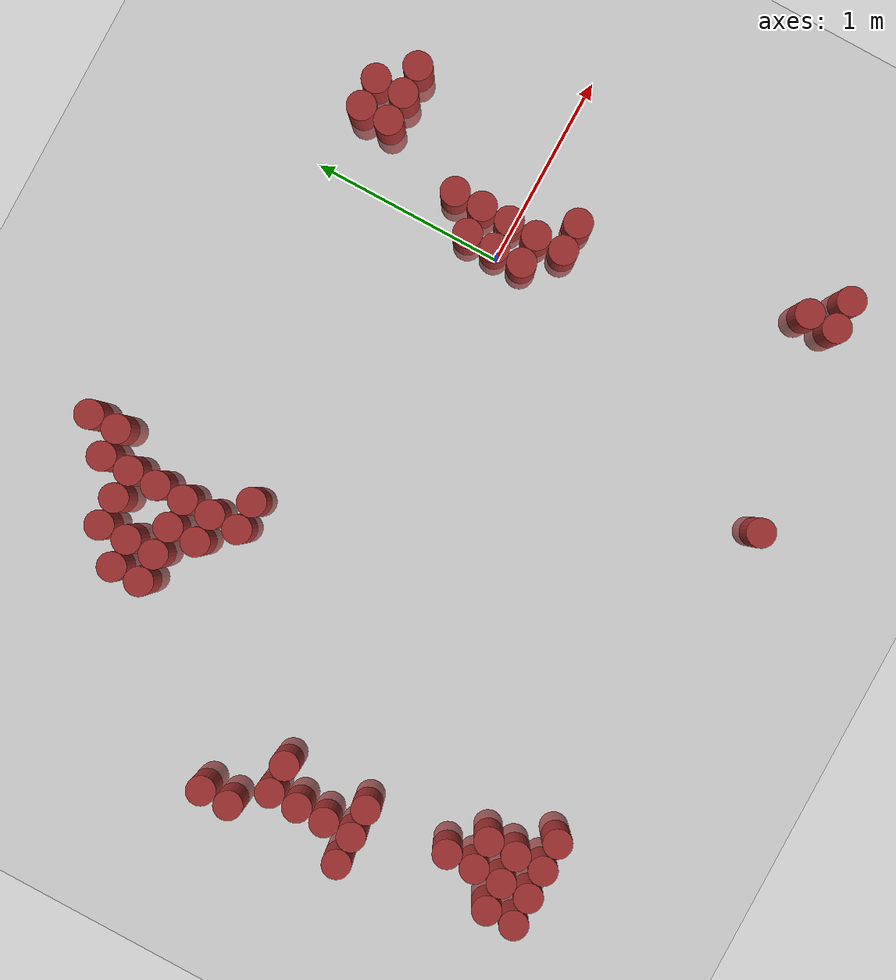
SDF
<sdf version="1.6">
 <world name="default">
  <model name="ground_plane">
   <static>1</static>
   <link name="link">
    <collision name="collision">
     <geometry><plane><normal>0 0 1</normal><size>100 100</size></plane></geometry>
     <surface><friction><ode><mu>100</mu><mu2>50</mu2></ode></friction></surface>
    </collision>
    <visual name="visual">
     <cast_shadows>0</cast_shadows>
     <geometry><plane><normal>0 0 1</normal><size>100 100</size></plane></geometry>
     <material>
      <script><uri>file://media/materials/scripts/gazebo.material</uri><name>Gazebo/Grey</name></script>
     </material>
    </visual>
   </link>
  </model>
  <model name="unit_cylinder_289">
   <static>1</static>
   <pose>-2.975000 -0.725000 0.000000 0.000000 0.000000 0.000000</pose>
   <link name="link">
    <inertial>
     <mass>1</mass>
     <inertia><ixx>0.145833</ixx><ixy>0</ixy><ixz>0</ixz><iyy>0.145833</iyy><iyz>0</iyz><izz>0.125</izz></inertia>
    </inertial>
    <collision name="collision">
     <geometry><cylinder><radius>0.075000</radius><length>1.5</length></cylinder></geometry>
    </collision>
    <visual name="visual">
     <geometry><cylinder><radius>0.075000</radius><length>1.5</length></cylinder></geometry>
     <material>
      <ambient>0.648000 0.192000 0.192000 1</ambient>
      <diffuse>0.648000 0.192000 0.192000 1</diffuse>
     </material>
     <material>
      <script><name>Gazebo/Grey</name><uri>file://media/materials/scripts/gazebo.material</uri></script>
     </material>
    </visual>
   </link>
  </model>
  <model name="unit_cylinder_290">
   <static>1</static>
   <pose>-2.975000 -0.125000 0.000000 0.000000 0.000000 0.000000</pose>
   <link name="link">
    <inertial>
     <mass>1</mass>
     <inertia><ixx>0.145833</ixx><ixy>0</ixy><ixz>0</ixz><iyy>0.145833</iyy><iyz>0</iyz><izz>0.125</izz></inertia>
    </inertial>
    <collision name="collision">
     <geometry><cylinder><radius>0.075000</radius><length>1.5</length></cylinder></geometry>
    </collision>
    <visual name="visual">
     <geometry><cylinder><radius>0.075000</radius><length>1.5</length></cylinder></geometry>
     <material>
      <ambient>0.648000 0.192000 0.192000 1</ambient>
      <diffuse>0.648000 0.192000 0.192000 1</diffuse>
     </material>
     <material>
      <script><name>Gazebo/Grey</name><uri>file://media/materials/scripts/gazebo.material</uri></script>
     </material>
    </visual>
   </link>
  </model>
  <model name="unit_cylinder_291">
   <static>1</static>
   <pose>-2.975000 0.025000 0.000000 0.000000 0.000000 0.000000</pose>
   <link name="link">
    <inertial>
     <mass>1</mass>
     <inertia><ixx>0.145833</ixx><ixy>0</ixy><ixz>0</ixz><iyy>0.145833</iyy><iyz>0</iyz><izz>0.125</izz></inertia>
    </inertial>
    <collision name="collision">
     <geometry><cylinder><radius>0.075000</radius><length>1.5</length></cylinder></geometry>
    </collision>
    <visual name="visual">
     <geometry><cylinder><radius>0.075000</radius><length>1.5</length></cylinder></geometry>
     <material>
      <ambient>0.648000 0.192000 0.192000 1</ambient>
      <diffuse>0.648000 0.192000 0.192000 1</diffuse>
     </material>
     <material>
      <script><name>Gazebo/Grey</name><uri>file://media/materials/scripts/gazebo.material</uri></script>
     </material>
    </visual>
   </link>
  </model>
  <model name="unit_cylinder_295">
   <static>1</static>
   <pose>-2.825000 -1.625000 0.000000 0.000000 0.000000 0.000000</pose>
   <link name="link">
    <inertial>
     <mass>1</mass>
     <inertia><ixx>0.145833</ixx><ixy>0</ixy><ixz>0</ixz><iyy>0.145833</iyy><iyz>0</iyz><izz>0.125</izz></inertia>
    </inertial>
    <collision name="collision">
     <geometry><cylinder><radius>0.075000</radius><length>1.5</length></cylinder></geometry>
    </collision>
    <visual name="visual">
     <geometry><cylinder><radius>0.075000</radius><length>1.5</length></cylinder></geometry>
     <material>
      <ambient>0.648000 0.192000 0.192000 1</ambient>
      <diffuse>0.648000 0.192000 0.192000 1</diffuse>
     </material>
     <material>
      <script><name>Gazebo/Grey</name><uri>file://media/materials/scripts/gazebo.material</uri></script>
     </material>
    </visual>
   </link>
  </model>
  <model name="unit_cylinder_296">
   <static>1</static>
   <pose>-2.825000 -1.475000 0.000000 0.000000 0.000000 0.000000</pose>
   <link name="link">
    <inertial>
     <mass>1</mass>
     <inertia><ixx>0.145833</ixx><ixy>0</ixy><ixz>0</ixz><iyy>0.145833</iyy><iyz>0</iyz><izz>0.125</izz></inertia>
    </inertial>
    <collision name="collision">
     <geometry><cylinder><radius>0.075000</radius><length>1.5</length></cylinder></geometry>
    </collision>
    <visual name="visual">
     <geometry><cylinder><radius>0.075000</radius><length>1.5</length></cylinder></geometry>
     <material>
      <ambient>0.648000 0.192000 0.192000 1</ambient>
      <diffuse>0.648000 0.192000 0.192000 1</diffuse>
     </material>
     <material>
      <script><name>Gazebo/Grey</name><uri>file://media/materials/scripts/gazebo.material</uri></script>
     </material>
    </visual>
   </link>
  </model>
  <model name="unit_cylinder_297">
   <static>1</static>
   <pose>-2.825000 -0.725000 0.000000 0.000000 0.000000 0.000000</pose>
   <link name="link">
    <inertial>
     <mass>1</mass>
     <inertia><ixx>0.145833</ixx><ixy>0</ixy><ixz>0</ixz><iyy>0.145833</iyy><iyz>0</iyz><izz>0.125</izz></inertia>
    </inertial>
    <collision name="collision">
     <geometry><cylinder><radius>0.075000</radius><length>1.5</length></cylinder></geometry>
    </collision>
    <visual name="visual">
     <geometry><cylinder><radius>0.075000</radius><length>1.5</length></cylinder></geometry>
     <material>
      <ambient>0.648000 0.192000 0.192000 1</ambient>
      <diffuse>0.648000 0.192000 0.192000 1</diffuse>
     </material>
     <material>
      <script><name>Gazebo/Grey</name><uri>file://media/materials/scripts/gazebo.material</uri></script>
     </material>
    </visual>
   </link>
  </model>
  <model name="unit_cylinder_298">
   <static>1</static>
   <pose>-2.825000 -0.575000 0.000000 0.000000 0.000000 0.000000</pose>
   <link name="link">
    <inertial>
     <mass>1</mass>
     <inertia><ixx>0.145833</ixx><ixy>0</ixy><ixz>0</ixz><iyy>0.145833</iyy><iyz>0</iyz><izz>0.125</izz></inertia>
    </inertial>
    <collision name="collision">
     <geometry><cylinder><radius>0.075000</radius><length>1.5</length></cylinder></geometry>
    </collision>
    <visual name="visual">
     <geometry><cylinder><radius>0.075000</radius><length>1.5</length></cylinder></geometry>
     <material>
      <ambient>0.648000 0.192000 0.192000 1</ambient>
      <diffuse>0.648000 0.192000 0.192000 1</diffuse>
     </material>
     <material>
      <script><name>Gazebo/Grey</name><uri>file://media/materials/scripts/gazebo.material</uri></script>
     </material>
    </visual>
   </link>
  </model>
  <model name="unit_cylinder_299">
   <static>1</static>
   <pose>-2.825000 -0.425000 0.000000 0.000000 0.000000 0.000000</pose>
   <link name="link">
    <inertial>
     <mass>1</mass>
     <inertia><ixx>0.145833</ixx><ixy>0</ixy><ixz>0</ixz><iyy>0.145833</iyy><iyz>0</iyz><izz>0.125</izz></inertia>
    </inertial>
    <collision name="collision">
     <geometry><cylinder><radius>0.075000</radius><length>1.5</length></cylinder></geometry>
    </collision>
    <visual name="visual">
     <geometry><cylinder><radius>0.075000</radius><length>1.5</length></cylinder></geometry>
     <material>
      <ambient>0.648000 0.192000 0.192000 1</ambient>
      <diffuse>0.648000 0.192000 0.192000 1</diffuse>
     </material>
     <material>
      <script><name>Gazebo/Grey</name><uri>file://media/materials/scripts/gazebo.material</uri></script>
     </material>
    </visual>
   </link>
  </model>
  <model name="unit_cylinder_300">
   <static>1</static>
   <pose>-2.825000 -0.275000 0.000000 0.000000 0.000000 0.000000</pose>
   <link name="link">
    <inertial>
     <mass>1</mass>
     <inertia><ixx>0.145833</ixx><ixy>0</ixy><ixz>0</ixz><iyy>0.145833</iyy><iyz>0</iyz><izz>0.125</izz></inertia>
    </inertial>
    <collision name="collision">
     <geometry><cylinder><radius>0.075000</radius><length>1.5</length></cylinder></geometry>
    </collision>
    <visual name="visual">
     <geometry><cylinder><radius>0.075000</radius><length>1.5</length></cylinder></geometry>
     <material>
      <ambient>0.648000 0.192000 0.192000 1</ambient>
      <diffuse>0.648000 0.192000 0.192000 1</diffuse>
     </material>
     <material>
      <script><name>Gazebo/Grey</name><uri>file://media/materials/scripts/gazebo.material</uri></script>
     </material>
    </visual>
   </link>
  </model>
  <model name="unit_cylinder_307">
   <static>1</static>
   <pose>-2.675000 -1.625000 0.000000 0.000000 0.000000 0.000000</pose>
   <link name="link">
    <inertial>
     <mass>1</mass>
     <inertia><ixx>0.145833</ixx><ixy>0</ixy><ixz>0</ixz><iyy>0.145833</iyy><iyz>0</iyz><izz>0.125</izz></inertia>
    </inertial>
    <collision name="collision">
     <geometry><cylinder><radius>0.075000</radius><length>1.5</length></cylinder></geometry>
    </collision>
    <visual name="visual">
     <geometry><cylinder><radius>0.075000</radius><length>1.5</length></cylinder></geometry>
     <material>
      <ambient>0.648000 0.192000 0.192000 1</ambient>
      <diffuse>0.648000 0.192000 0.192000 1</diffuse>
     </material>
     <material>
      <script><name>Gazebo/Grey</name><uri>file://media/materials/scripts/gazebo.material</uri></script>
     </material>
    </visual>
   </link>
  </model>
  <model name="unit_cylinder_308">
   <static>1</static>
   <pose>-2.675000 -1.475000 0.000000 0.000000 0.000000 0.000000</pose>
   <link name="link">
    <inertial>
     <mass>1</mass>
     <inertia><ixx>0.145833</ixx><ixy>0</ixy><ixz>0</ixz><iyy>0.145833</iyy><iyz>0</iyz><izz>0.125</izz></inertia>
    </inertial>
    <collision name="collision">
     <geometry><cylinder><radius>0.075000</radius><length>1.5</length></cylinder></geometry>
    </collision>
    <visual name="visual">
     <geometry><cylinder><radius>0.075000</radius><length>1.5</length></cylinder></geometry>
     <material>
      <ambient>0.648000 0.192000 0.192000 1</ambient>
      <diffuse>0.648000 0.192000 0.192000 1</diffuse>
     </material>
     <material>
      <script><name>Gazebo/Grey</name><uri>file://media/materials/scripts/gazebo.material</uri></script>
     </material>
    </visual>
   </link>
  </model>
  <model name="unit_cylinder_309">
   <static>1</static>
   <pose>-2.675000 -1.325000 0.000000 0.000000 0.000000 0.000000</pose>
   <link name="link">
    <inertial>
     <mass>1</mass>
     <inertia><ixx>0.145833</ixx><ixy>0</ixy><ixz>0</ixz><iyy>0.145833</iyy><iyz>0</iyz><izz>0.125</izz></inertia>
    </inertial>
    <collision name="collision">
     <geometry><cylinder><radius>0.075000</radius><length>1.5</length></cylinder></geometry>
    </collision>
    <visual name="visual">
     <geometry><cylinder><radius>0.075000</radius><length>1.5</length></cylinder></geometry>
     <material>
      <ambient>0.648000 0.192000 0.192000 1</ambient>
      <diffuse>0.648000 0.192000 0.192000 1</diffuse>
     </material>
     <material>
      <script><name>Gazebo/Grey</name><uri>file://media/materials/scripts/gazebo.material</uri></script>
     </material>
    </visual>
   </link>
  </model>
  <model name="unit_cylinder_310">
   <static>1</static>
   <pose>-2.675000 -1.175000 0.000000 0.000000 0.000000 0.000000</pose>
   <link name="link">
    <inertial>
     <mass>1</mass>
     <inertia><ixx>0.145833</ixx><ixy>0</ixy><ixz>0</ixz><iyy>0.145833</iyy><iyz>0</iyz><izz>0.125</izz></inertia>
    </inertial>
    <collision name="collision">
     <geometry><cylinder><radius>0.075000</radius><length>1.5</length></cylinder></geometry>
    </collision>
    <visual name="visual">
     <geometry><cylinder><radius>0.075000</radius><length>1.5</length></cylinder></geometry>
     <material>
      <ambient>0.648000 0.192000 0.192000 1</ambient>
      <diffuse>0.648000 0.192000 0.192000 1</diffuse>
     </material>
     <material>
      <script><name>Gazebo/Grey</name><uri>file://media/materials/scripts/gazebo.material</uri></script>
     </material>
    </visual>
   </link>
  </model>
  <model name="unit_cylinder_311">
   <static>1</static>
   <pose>-2.675000 -0.725000 0.000000 0.000000 0.000000 0.000000</pose>
   <link name="link">
    <inertial>
     <mass>1</mass>
     <inertia><ixx>0.145833</ixx><ixy>0</ixy><ixz>0</ixz><iyy>0.145833</iyy><iyz>0</iyz><izz>0.125</izz></inertia>
    </inertial>
    <collision name="collision">
     <geometry><cylinder><radius>0.075000</radius><length>1.5</length></cylinder></geometry>
    </collision>
    <visual name="visual">
     <geometry><cylinder><radius>0.075000</radius><length>1.5</length></cylinder></geometry>
     <material>
      <ambient>0.648000 0.192000 0.192000 1</ambient>
      <diffuse>0.648000 0.192000 0.192000 1</diffuse>
     </material>
     <material>
      <script><name>Gazebo/Grey</name><uri>file://media/materials/scripts/gazebo.material</uri></script>
     </material>
    </visual>
   </link>
  </model>
  <model name="unit_cylinder_312">
   <static>1</static>
   <pose>-2.675000 -0.275000 0.000000 0.000000 0.000000 0.000000</pose>
   <link name="link">
    <inertial>
     <mass>1</mass>
     <inertia><ixx>0.145833</ixx><ixy>0</ixy><ixz>0</ixz><iyy>0.145833</iyy><iyz>0</iyz><izz>0.125</izz></inertia>
    </inertial>
    <collision name="collision">
     <geometry><cylinder><radius>0.075000</radius><length>1.5</length></cylinder></geometry>
    </collision>
    <visual name="visual">
     <geometry><cylinder><radius>0.075000</radius><length>1.5</length></cylinder></geometry>
     <material>
      <ambient>0.648000 0.192000 0.192000 1</ambient>
      <diffuse>0.648000 0.192000 0.192000 1</diffuse>
     </material>
     <material>
      <script><name>Gazebo/Grey</name><uri>file://media/materials/scripts/gazebo.material</uri></script>
     </material>
    </visual>
   </link>
  </model>
  <model name="unit_cylinder_319">
   <static>1</static>
   <pose>-2.525000 -1.625000 0.000000 0.000000 0.000000 0.000000</pose>
   <link name="link">
    <inertial>
     <mass>1</mass>
     <inertia><ixx>0.145833</ixx><ixy>0</ixy><ixz>0</ixz><iyy>0.145833</iyy><iyz>0</iyz><izz>0.125</izz></inertia>
    </inertial>
    <collision name="collision">
     <geometry><cylinder><radius>0.075000</radius><length>1.5</length></cylinder></geometry>
    </collision>
    <visual name="visual">
     <geometry><cylinder><radius>0.075000</radius><length>1.5</length></cylinder></geometry>
     <material>
      <ambient>0.648000 0.192000 0.192000 1</ambient>
      <diffuse>0.648000 0.192000 0.192000 1</diffuse>
     </material>
     <material>
      <script><name>Gazebo/Grey</name><uri>file://media/materials/scripts/gazebo.material</uri></script>
     </material>
    </visual>
   </link>
  </model>
  <model name="unit_cylinder_320">
   <static>1</static>
   <pose>-2.525000 -1.475000 0.000000 0.000000 0.000000 0.000000</pose>
   <link name="link">
    <inertial>
     <mass>1</mass>
     <inertia><ixx>0.145833</ixx><ixy>0</ixy><ixz>0</ixz><iyy>0.145833</iyy><iyz>0</iyz><izz>0.125</izz></inertia>
    </inertial>
    <collision name="collision">
     <geometry><cylinder><radius>0.075000</radius><length>1.5</length></cylinder></geometry>
    </collision>
    <visual name="visual">
     <geometry><cylinder><radius>0.075000</radius><length>1.5</length></cylinder></geometry>
     <material>
      <ambient>0.648000 0.192000 0.192000 1</ambient>
      <diffuse>0.648000 0.192000 0.192000 1</diffuse>
     </material>
     <material>
      <script><name>Gazebo/Grey</name><uri>file://media/materials/scripts/gazebo.material</uri></script>
     </material>
    </visual>
   </link>
  </model>
  <model name="unit_cylinder_321">
   <static>1</static>
   <pose>-2.525000 -1.325000 0.000000 0.000000 0.000000 0.000000</pose>
   <link name="link">
    <inertial>
     <mass>1</mass>
     <inertia><ixx>0.145833</ixx><ixy>0</ixy><ixz>0</ixz><iyy>0.145833</iyy><iyz>0</iyz><izz>0.125</izz></inertia>
    </inertial>
    <collision name="collision">
     <geometry><cylinder><radius>0.075000</radius><length>1.5</length></cylinder></geometry>
    </collision>
    <visual name="visual">
     <geometry><cylinder><radius>0.075000</radius><length>1.5</length></cylinder></geometry>
     <material>
      <ambient>0.648000 0.192000 0.192000 1</ambient>
      <diffuse>0.648000 0.192000 0.192000 1</diffuse>
     </material>
     <material>
      <script><name>Gazebo/Grey</name><uri>file://media/materials/scripts/gazebo.material</uri></script>
     </material>
    </visual>
   </link>
  </model>
  <model name="unit_cylinder_325">
   <static>1</static>
   <pose>-2.375000 -1.625000 0.000000 0.000000 0.000000 0.000000</pose>
   <link name="link">
    <inertial>
     <mass>1</mass>
     <inertia><ixx>0.145833</ixx><ixy>0</ixy><ixz>0</ixz><iyy>0.145833</iyy><iyz>0</iyz><izz>0.125</izz></inertia>
    </inertial>
    <collision name="collision">
     <geometry><cylinder><radius>0.075000</radius><length>1.5</length></cylinder></geometry>
    </collision>
    <visual name="visual">
     <geometry><cylinder><radius>0.075000</radius><length>1.5</length></cylinder></geometry>
     <material>
      <ambient>0.648000 0.192000 0.192000 1</ambient>
      <diffuse>0.648000 0.192000 0.192000 1</diffuse>
     </material>
     <material>
      <script><name>Gazebo/Grey</name><uri>file://media/materials/scripts/gazebo.material</uri></script>
     </material>
    </visual>
   </link>
  </model>
  <model name="unit_cylinder_330">
   <static>1</static>
   <pose>-2.225000 0.775000 0.000000 0.000000 0.000000 0.000000</pose>
   <link name="link">
    <inertial>
     <mass>1</mass>
     <inertia><ixx>0.145833</ixx><ixy>0</ixy><ixz>0</ixz><iyy>0.145833</iyy><iyz>0</iyz><izz>0.125</izz></inertia>
    </inertial>
    <collision name="collision">
     <geometry><cylinder><radius>0.075000</radius><length>1.5</length></cylinder></geometry>
    </collision>
    <visual name="visual">
     <geometry><cylinder><radius>0.075000</radius><length>1.5</length></cylinder></geometry>
     <material>
      <ambient>0.648000 0.192000 0.192000 1</ambient>
      <diffuse>0.648000 0.192000 0.192000 1</diffuse>
     </material>
     <material>
      <script><name>Gazebo/Grey</name><uri>file://media/materials/scripts/gazebo.material</uri></script>
     </material>
    </visual>
   </link>
  </model>
  <model name="unit_cylinder_331">
   <static>1</static>
   <pose>-2.225000 0.925000 0.000000 0.000000 0.000000 0.000000</pose>
   <link name="link">
    <inertial>
     <mass>1</mass>
     <inertia><ixx>0.145833</ixx><ixy>0</ixy><ixz>0</ixz><iyy>0.145833</iyy><iyz>0</iyz><izz>0.125</izz></inertia>
    </inertial>
    <collision name="collision">
     <geometry><cylinder><radius>0.075000</radius><length>1.5</length></cylinder></geometry>
    </collision>
    <visual name="visual">
     <geometry><cylinder><radius>0.075000</radius><length>1.5</length></cylinder></geometry>
     <material>
      <ambient>0.648000 0.192000 0.192000 1</ambient>
      <diffuse>0.648000 0.192000 0.192000 1</diffuse>
     </material>
     <material>
      <script><name>Gazebo/Grey</name><uri>file://media/materials/scripts/gazebo.material</uri></script>
     </material>
    </visual>
   </link>
  </model>
  <model name="unit_cylinder_335">
   <static>1</static>
   <pose>-2.075000 0.775000 0.000000 0.000000 0.000000 0.000000</pose>
   <link name="link">
    <inertial>
     <mass>1</mass>
     <inertia><ixx>0.145833</ixx><ixy>0</ixy><ixz>0</ixz><iyy>0.145833</iyy><iyz>0</iyz><izz>0.125</izz></inertia>
    </inertial>
    <collision name="collision">
     <geometry><cylinder><radius>0.075000</radius><length>1.5</length></cylinder></geometry>
    </collision>
    <visual name="visual">
     <geometry><cylinder><radius>0.075000</radius><length>1.5</length></cylinder></geometry>
     <material>
      <ambient>0.648000 0.192000 0.192000 1</ambient>
      <diffuse>0.648000 0.192000 0.192000 1</diffuse>
     </material>
     <material>
      <script><name>Gazebo/Grey</name><uri>file://media/materials/scripts/gazebo.material</uri></script>
     </material>
    </visual>
   </link>
  </model>
  <model name="unit_cylinder_336">
   <static>1</static>
   <pose>-2.075000 0.925000 0.000000 0.000000 0.000000 0.000000</pose>
   <link name="link">
    <inertial>
     <mass>1</mass>
     <inertia><ixx>0.145833</ixx><ixy>0</ixy><ixz>0</ixz><iyy>0.145833</iyy><iyz>0</iyz><izz>0.125</izz></inertia>
    </inertial>
    <collision name="collision">
     <geometry><cylinder><radius>0.075000</radius><length>1.5</length></cylinder></geometry>
    </collision>
    <visual name="visual">
     <geometry><cylinder><radius>0.075000</radius><length>1.5</length></cylinder></geometry>
     <material>
      <ambient>0.648000 0.192000 0.192000 1</ambient>
      <diffuse>0.648000 0.192000 0.192000 1</diffuse>
     </material>
     <material>
      <script><name>Gazebo/Grey</name><uri>file://media/materials/scripts/gazebo.material</uri></script>
     </material>
    </visual>
   </link>
  </model>
  <model name="unit_cylinder_337">
   <static>1</static>
   <pose>-2.075000 1.075000 0.000000 0.000000 0.000000 0.000000</pose>
   <link name="link">
    <inertial>
     <mass>1</mass>
     <inertia><ixx>0.145833</ixx><ixy>0</ixy><ixz>0</ixz><iyy>0.145833</iyy><iyz>0</iyz><izz>0.125</izz></inertia>
    </inertial>
    <collision name="collision">
     <geometry><cylinder><radius>0.075000</radius><length>1.5</length></cylinder></geometry>
    </collision>
    <visual name="visual">
     <geometry><cylinder><radius>0.075000</radius><length>1.5</length></cylinder></geometry>
     <material>
      <ambient>0.648000 0.192000 0.192000 1</ambient>
      <diffuse>0.648000 0.192000 0.192000 1</diffuse>
     </material>
     <material>
      <script><name>Gazebo/Grey</name><uri>file://media/materials/scripts/gazebo.material</uri></script>
     </material>
    </visual>
   </link>
  </model>
  <model name="unit_cylinder_340">
   <static>1</static>
   <pose>-1.925000 0.625000 0.000000 0.000000 0.000000 0.000000</pose>
   <link name="link">
    <inertial>
     <mass>1</mass>
     <inertia><ixx>0.145833</ixx><ixy>0</ixy><ixz>0</ixz><iyy>0.145833</iyy><iyz>0</iyz><izz>0.125</izz></inertia>
    </inertial>
    <collision name="collision">
     <geometry><cylinder><radius>0.075000</radius><length>1.5</length></cylinder></geometry>
    </collision>
    <visual name="visual">
     <geometry><cylinder><radius>0.075000</radius><length>1.5</length></cylinder></geometry>
     <material>
      <ambient>0.648000 0.192000 0.192000 1</ambient>
      <diffuse>0.648000 0.192000 0.192000 1</diffuse>
     </material>
     <material>
      <script><name>Gazebo/Grey</name><uri>file://media/materials/scripts/gazebo.material</uri></script>
     </material>
    </visual>
   </link>
  </model>
  <model name="unit_cylinder_341">
   <static>1</static>
   <pose>-1.925000 0.775000 0.000000 0.000000 0.000000 0.000000</pose>
   <link name="link">
    <inertial>
     <mass>1</mass>
     <inertia><ixx>0.145833</ixx><ixy>0</ixy><ixz>0</ixz><iyy>0.145833</iyy><iyz>0</iyz><izz>0.125</izz></inertia>
    </inertial>
    <collision name="collision">
     <geometry><cylinder><radius>0.075000</radius><length>1.5</length></cylinder></geometry>
    </collision>
    <visual name="visual">
     <geometry><cylinder><radius>0.075000</radius><length>1.5</length></cylinder></geometry>
     <material>
      <ambient>0.648000 0.192000 0.192000 1</ambient>
      <diffuse>0.648000 0.192000 0.192000 1</diffuse>
     </material>
     <material>
      <script><name>Gazebo/Grey</name><uri>file://media/materials/scripts/gazebo.material</uri></script>
     </material>
    </visual>
   </link>
  </model>
  <model name="unit_cylinder_342">
   <static>1</static>
   <pose>-1.925000 1.075000 0.000000 0.000000 0.000000 0.000000</pose>
   <link name="link">
    <inertial>
     <mass>1</mass>
     <inertia><ixx>0.145833</ixx><ixy>0</ixy><ixz>0</ixz><iyy>0.145833</iyy><iyz>0</iyz><izz>0.125</izz></inertia>
    </inertial>
    <collision name="collision">
     <geometry><cylinder><radius>0.075000</radius><length>1.5</length></cylinder></geometry>
    </collision>
    <visual name="visual">
     <geometry><cylinder><radius>0.075000</radius><length>1.5</length></cylinder></geometry>
     <material>
      <ambient>0.648000 0.192000 0.192000 1</ambient>
      <diffuse>0.648000 0.192000 0.192000 1</diffuse>
     </material>
     <material>
      <script><name>Gazebo/Grey</name><uri>file://media/materials/scripts/gazebo.material</uri></script>
     </material>
    </visual>
   </link>
  </model>
  <model name="unit_cylinder_343">
   <static>1</static>
   <pose>-1.775000 0.475000 0.000000 0.000000 0.000000 0.000000</pose>
   <link name="link">
    <inertial>
     <mass>1</mass>
     <inertia><ixx>0.145833</ixx><ixy>0</ixy><ixz>0</ixz><iyy>0.145833</iyy><iyz>0</iyz><izz>0.125</izz></inertia>
    </inertial>
    <collision name="collision">
     <geometry><cylinder><radius>0.075000</radius><length>1.5</length></cylinder></geometry>
    </collision>
    <visual name="visual">
     <geometry><cylinder><radius>0.075000</radius><length>1.5</length></cylinder></geometry>
     <material>
      <ambient>0.648000 0.192000 0.192000 1</ambient>
      <diffuse>0.648000 0.192000 0.192000 1</diffuse>
     </material>
     <material>
      <script><name>Gazebo/Grey</name><uri>file://media/materials/scripts/gazebo.material</uri></script>
     </material>
    </visual>
   </link>
  </model>
  <model name="unit_cylinder_344">
   <static>1</static>
   <pose>-1.775000 0.625000 0.000000 0.000000 0.000000 0.000000</pose>
   <link name="link">
    <inertial>
     <mass>1</mass>
     <inertia><ixx>0.145833</ixx><ixy>0</ixy><ixz>0</ixz><iyy>0.145833</iyy><iyz>0</iyz><izz>0.125</izz></inertia>
    </inertial>
    <collision name="collision">
     <geometry><cylinder><radius>0.075000</radius><length>1.5</length></cylinder></geometry>
    </collision>
    <visual name="visual">
     <geometry><cylinder><radius>0.075000</radius><length>1.5</length></cylinder></geometry>
     <material>
      <ambient>0.648000 0.192000 0.192000 1</ambient>
      <diffuse>0.648000 0.192000 0.192000 1</diffuse>
     </material>
     <material>
      <script><name>Gazebo/Grey</name><uri>file://media/materials/scripts/gazebo.material</uri></script>
     </material>
    </visual>
   </link>
  </model>
  <model name="unit_cylinder_345">
   <static>1</static>
   <pose>-1.775000 0.775000 0.000000 0.000000 0.000000 0.000000</pose>
   <link name="link">
    <inertial>
     <mass>1</mass>
     <inertia><ixx>0.145833</ixx><ixy>0</ixy><ixz>0</ixz><iyy>0.145833</iyy><iyz>0</iyz><izz>0.125</izz></inertia>
    </inertial>
    <collision name="collision">
     <geometry><cylinder><radius>0.075000</radius><length>1.5</length></cylinder></geometry>
    </collision>
    <visual name="visual">
     <geometry><cylinder><radius>0.075000</radius><length>1.5</length></cylinder></geometry>
     <material>
      <ambient>0.648000 0.192000 0.192000 1</ambient>
      <diffuse>0.648000 0.192000 0.192000 1</diffuse>
     </material>
     <material>
      <script><name>Gazebo/Grey</name><uri>file://media/materials/scripts/gazebo.material</uri></script>
     </material>
    </visual>
   </link>
  </model>
  <model name="unit_cylinder_346">
   <static>1</static>
   <pose>-1.775000 0.925000 0.000000 0.000000 0.000000 0.000000</pose>
   <link name="link">
    <inertial>
     <mass>1</mass>
     <inertia><ixx>0.145833</ixx><ixy>0</ixy><ixz>0</ixz><iyy>0.145833</iyy><iyz>0</iyz><izz>0.125</izz></inertia>
    </inertial>
    <collision name="collision">
     <geometry><cylinder><radius>0.075000</radius><length>1.5</length></cylinder></geometry>
    </collision>
    <visual name="visual">
     <geometry><cylinder><radius>0.075000</radius><length>1.5</length></cylinder></geometry>
     <material>
      <ambient>0.648000 0.192000 0.192000 1</ambient>
      <diffuse>0.648000 0.192000 0.192000 1</diffuse>
     </material>
     <material>
      <script><name>Gazebo/Grey</name><uri>file://media/materials/scripts/gazebo.material</uri></script>
     </material>
    </visual>
   </link>
  </model>
  <model name="unit_cylinder_347">
   <static>1</static>
   <pose>-1.775000 1.075000 0.000000 0.000000 0.000000 0.000000</pose>
   <link name="link">
    <inertial>
     <mass>1</mass>
     <inertia><ixx>0.145833</ixx><ixy>0</ixy><ixz>0</ixz><iyy>0.145833</iyy><iyz>0</iyz><izz>0.125</izz></inertia>
    </inertial>
    <collision name="collision">
     <geometry><cylinder><radius>0.075000</radius><length>1.5</length></cylinder></geometry>
    </collision>
    <visual name="visual">
     <geometry><cylinder><radius>0.075000</radius><length>1.5</length></cylinder></geometry>
     <material>
      <ambient>0.648000 0.192000 0.192000 1</ambient>
      <diffuse>0.648000 0.192000 0.192000 1</diffuse>
     </material>
     <material>
      <script><name>Gazebo/Grey</name><uri>file://media/materials/scripts/gazebo.material</uri></script>
     </material>
    </visual>
   </link>
  </model>
  <model name="unit_cylinder_348">
   <static>1</static>
   <pose>-1.775000 1.225000 0.000000 0.000000 0.000000 0.000000</pose>
   <link name="link">
    <inertial>
     <mass>1</mass>
     <inertia><ixx>0.145833</ixx><ixy>0</ixy><ixz>0</ixz><iyy>0.145833</iyy><iyz>0</iyz><izz>0.125</izz></inertia>
    </inertial>
    <collision name="collision">
     <geometry><cylinder><radius>0.075000</radius><length>1.5</length></cylinder></geometry>
    </collision>
    <visual name="visual">
     <geometry><cylinder><radius>0.075000</radius><length>1.5</length></cylinder></geometry>
     <material>
      <ambient>0.648000 0.192000 0.192000 1</ambient>
      <diffuse>0.648000 0.192000 0.192000 1</diffuse>
     </material>
     <material>
      <script><name>Gazebo/Grey</name><uri>file://media/materials/scripts/gazebo.material</uri></script>
     </material>
    </visual>
   </link>
  </model>
  <model name="unit_cylinder_349">
   <static>1</static>
   <pose>-1.625000 0.475000 0.000000 0.000000 0.000000 0.000000</pose>
   <link name="link">
    <inertial>
     <mass>1</mass>
     <inertia><ixx>0.145833</ixx><ixy>0</ixy><ixz>0</ixz><iyy>0.145833</iyy><iyz>0</iyz><izz>0.125</izz></inertia>
    </inertial>
    <collision name="collision">
     <geometry><cylinder><radius>0.075000</radius><length>1.5</length></cylinder></geometry>
    </collision>
    <visual name="visual">
     <geometry><cylinder><radius>0.075000</radius><length>1.5</length></cylinder></geometry>
     <material>
      <ambient>0.648000 0.192000 0.192000 1</ambient>
      <diffuse>0.648000 0.192000 0.192000 1</diffuse>
     </material>
     <material>
      <script><name>Gazebo/Grey</name><uri>file://media/materials/scripts/gazebo.material</uri></script>
     </material>
    </visual>
   </link>
  </model>
  <model name="unit_cylinder_350">
   <static>1</static>
   <pose>-1.625000 1.225000 0.000000 0.000000 0.000000 0.000000</pose>
   <link name="link">
    <inertial>
     <mass>1</mass>
     <inertia><ixx>0.145833</ixx><ixy>0</ixy><ixz>0</ixz><iyy>0.145833</iyy><iyz>0</iyz><izz>0.125</izz></inertia>
    </inertial>
    <collision name="collision">
     <geometry><cylinder><radius>0.075000</radius><length>1.5</length></cylinder></geometry>
    </collision>
    <visual name="visual">
     <geometry><cylinder><radius>0.075000</radius><length>1.5</length></cylinder></geometry>
     <material>
      <ambient>0.648000 0.192000 0.192000 1</ambient>
      <diffuse>0.648000 0.192000 0.192000 1</diffuse>
     </material>
     <material>
      <script><name>Gazebo/Grey</name><uri>file://media/materials/scripts/gazebo.material</uri></script>
     </material>
    </visual>
   </link>
  </model>
  <model name="unit_cylinder_351">
   <static>1</static>
   <pose>-1.625000 1.375000 0.000000 0.000000 0.000000 0.000000</pose>
   <link name="link">
    <inertial>
     <mass>1</mass>
     <inertia><ixx>0.145833</ixx><ixy>0</ixy><ixz>0</ixz><iyy>0.145833</iyy><iyz>0</iyz><izz>0.125</izz></inertia>
    </inertial>
    <collision name="collision">
     <geometry><cylinder><radius>0.075000</radius><length>1.5</length></cylinder></geometry>
    </collision>
    <visual name="visual">
     <geometry><cylinder><radius>0.075000</radius><length>1.5</length></cylinder></geometry>
     <material>
      <ambient>0.648000 0.192000 0.192000 1</ambient>
      <diffuse>0.648000 0.192000 0.192000 1</diffuse>
     </material>
     <material>
      <script><name>Gazebo/Grey</name><uri>file://media/materials/scripts/gazebo.material</uri></script>
     </material>
    </visual>
   </link>
  </model>
  <model name="unit_cylinder_362">
   <static>1</static>
   <pose>-0.575000 -1.775000 0.000000 0.000000 0.000000 0.000000</pose>
   <link name="link">
    <inertial>
     <mass>1</mass>
     <inertia><ixx>0.145833</ixx><ixy>0</ixy><ixz>0</ixz><iyy>0.145833</iyy><iyz>0</iyz><izz>0.125</izz></inertia>
    </inertial>
    <collision name="collision">
     <geometry><cylinder><radius>0.075000</radius><length>1.5</length></cylinder></geometry>
    </collision>
    <visual name="visual">
     <geometry><cylinder><radius>0.075000</radius><length>1.5</length></cylinder></geometry>
     <material>
      <ambient>0.648000 0.192000 0.192000 1</ambient>
      <diffuse>0.648000 0.192000 0.192000 1</diffuse>
     </material>
     <material>
      <script><name>Gazebo/Grey</name><uri>file://media/materials/scripts/gazebo.material</uri></script>
     </material>
    </visual>
   </link>
  </model>
  <model name="unit_cylinder_371">
   <static>1</static>
   <pose>0.025000 -0.125000 0.000000 0.000000 0.000000 0.000000</pose>
   <link name="link">
    <inertial>
     <mass>1</mass>
     <inertia><ixx>0.145833</ixx><ixy>0</ixy><ixz>0</ixz><iyy>0.145833</iyy><iyz>0</iyz><izz>0.125</izz></inertia>
    </inertial>
    <collision name="collision">
     <geometry><cylinder><radius>0.075000</radius><length>1.5</length></cylinder></geometry>
    </collision>
    <visual name="visual">
     <geometry><cylinder><radius>0.075000</radius><length>1.5</length></cylinder></geometry>
     <material>
      <ambient>0.648000 0.192000 0.192000 1</ambient>
      <diffuse>0.648000 0.192000 0.192000 1</diffuse>
     </material>
     <material>
      <script><name>Gazebo/Grey</name><uri>file://media/materials/scripts/gazebo.material</uri></script>
     </material>
    </visual>
   </link>
  </model>
  <model name="unit_cylinder_372">
   <static>1</static>
   <pose>0.025000 0.025000 0.000000 0.000000 0.000000 0.000000</pose>
   <link name="link">
    <inertial>
     <mass>1</mass>
     <inertia><ixx>0.145833</ixx><ixy>0</ixy><ixz>0</ixz><iyy>0.145833</iyy><iyz>0</iyz><izz>0.125</izz></inertia>
    </inertial>
    <collision name="collision">
     <geometry><cylinder><radius>0.075000</radius><length>1.5</length></cylinder></geometry>
    </collision>
    <visual name="visual">
     <geometry><cylinder><radius>0.075000</radius><length>1.5</length></cylinder></geometry>
     <material>
      <ambient>0.648000 0.192000 0.192000 1</ambient>
      <diffuse>0.648000 0.192000 0.192000 1</diffuse>
     </material>
     <material>
      <script><name>Gazebo/Grey</name><uri>file://media/materials/scripts/gazebo.material</uri></script>
     </material>
    </visual>
   </link>
  </model>
  <model name="unit_cylinder_373">
   <static>1</static>
   <pose>0.025000 0.175000 0.000000 0.000000 0.000000 0.000000</pose>
   <link name="link">
    <inertial>
     <mass>1</mass>
     <inertia><ixx>0.145833</ixx><ixy>0</ixy><ixz>0</ixz><iyy>0.145833</iyy><iyz>0</iyz><izz>0.125</izz></inertia>
    </inertial>
    <collision name="collision">
     <geometry><cylinder><radius>0.075000</radius><length>1.5</length></cylinder></geometry>
    </collision>
    <visual name="visual">
     <geometry><cylinder><radius>0.075000</radius><length>1.5</length></cylinder></geometry>
     <material>
      <ambient>0.648000 0.192000 0.192000 1</ambient>
      <diffuse>0.648000 0.192000 0.192000 1</diffuse>
     </material>
     <material>
      <script><name>Gazebo/Grey</name><uri>file://media/materials/scripts/gazebo.material</uri></script>
     </material>
    </visual>
   </link>
  </model>
  <model name="unit_cylinder_375">
   <static>1</static>
   <pose>0.175000 -0.275000 0.000000 0.000000 0.000000 0.000000</pose>
   <link name="link">
    <inertial>
     <mass>1</mass>
     <inertia><ixx>0.145833</ixx><ixy>0</ixy><ixz>0</ixz><iyy>0.145833</iyy><iyz>0</iyz><izz>0.125</izz></inertia>
    </inertial>
    <collision name="collision">
     <geometry><cylinder><radius>0.075000</radius><length>1.5</length></cylinder></geometry>
    </collision>
    <visual name="visual">
     <geometry><cylinder><radius>0.075000</radius><length>1.5</length></cylinder></geometry>
     <material>
      <ambient>0.648000 0.192000 0.192000 1</ambient>
      <diffuse>0.648000 0.192000 0.192000 1</diffuse>
     </material>
     <material>
      <script><name>Gazebo/Grey</name><uri>file://media/materials/scripts/gazebo.material</uri></script>
     </material>
    </visual>
   </link>
  </model>
  <model name="unit_cylinder_376">
   <static>1</static>
   <pose>0.175000 -0.125000 0.000000 0.000000 0.000000 0.000000</pose>
   <link name="link">
    <inertial>
     <mass>1</mass>
     <inertia><ixx>0.145833</ixx><ixy>0</ixy><ixz>0</ixz><iyy>0.145833</iyy><iyz>0</iyz><izz>0.125</izz></inertia>
    </inertial>
    <collision name="collision">
     <geometry><cylinder><radius>0.075000</radius><length>1.5</length></cylinder></geometry>
    </collision>
    <visual name="visual">
     <geometry><cylinder><radius>0.075000</radius><length>1.5</length></cylinder></geometry>
     <material>
      <ambient>0.648000 0.192000 0.192000 1</ambient>
      <diffuse>0.648000 0.192000 0.192000 1</diffuse>
     </material>
     <material>
      <script><name>Gazebo/Grey</name><uri>file://media/materials/scripts/gazebo.material</uri></script>
     </material>
    </visual>
   </link>
  </model>
  <model name="unit_cylinder_377">
   <static>1</static>
   <pose>0.175000 0.025000 0.000000 0.000000 0.000000 0.000000</pose>
   <link name="link">
    <inertial>
     <mass>1</mass>
     <inertia><ixx>0.145833</ixx><ixy>0</ixy><ixz>0</ixz><iyy>0.145833</iyy><iyz>0</iyz><izz>0.125</izz></inertia>
    </inertial>
    <collision name="collision">
     <geometry><cylinder><radius>0.075000</radius><length>1.5</length></cylinder></geometry>
    </collision>
    <visual name="visual">
     <geometry><cylinder><radius>0.075000</radius><length>1.5</length></cylinder></geometry>
     <material>
      <ambient>0.648000 0.192000 0.192000 1</ambient>
      <diffuse>0.648000 0.192000 0.192000 1</diffuse>
     </material>
     <material>
      <script><name>Gazebo/Grey</name><uri>file://media/materials/scripts/gazebo.material</uri></script>
     </material>
    </visual>
   </link>
  </model>
  <model name="unit_cylinder_378">
   <static>1</static>
   <pose>0.175000 0.175000 0.000000 0.000000 0.000000 0.000000</pose>
   <link name="link">
    <inertial>
     <mass>1</mass>
     <inertia><ixx>0.145833</ixx><ixy>0</ixy><ixz>0</ixz><iyy>0.145833</iyy><iyz>0</iyz><izz>0.125</izz></inertia>
    </inertial>
    <collision name="collision">
     <geometry><cylinder><radius>0.075000</radius><length>1.5</length></cylinder></geometry>
    </collision>
    <visual name="visual">
     <geometry><cylinder><radius>0.075000</radius><length>1.5</length></cylinder></geometry>
     <material>
      <ambient>0.648000 0.192000 0.192000 1</ambient>
      <diffuse>0.648000 0.192000 0.192000 1</diffuse>
     </material>
     <material>
      <script><name>Gazebo/Grey</name><uri>file://media/materials/scripts/gazebo.material</uri></script>
     </material>
    </visual>
   </link>
  </model>
  <model name="unit_cylinder_379">
   <static>1</static>
   <pose>0.175000 0.325000 0.000000 0.000000 0.000000 0.000000</pose>
   <link name="link">
    <inertial>
     <mass>1</mass>
     <inertia><ixx>0.145833</ixx><ixy>0</ixy><ixz>0</ixz><iyy>0.145833</iyy><iyz>0</iyz><izz>0.125</izz></inertia>
    </inertial>
    <collision name="collision">
     <geometry><cylinder><radius>0.075000</radius><length>1.5</length></cylinder></geometry>
    </collision>
    <visual name="visual">
     <geometry><cylinder><radius>0.075000</radius><length>1.5</length></cylinder></geometry>
     <material>
      <ambient>0.648000 0.192000 0.192000 1</ambient>
      <diffuse>0.648000 0.192000 0.192000 1</diffuse>
     </material>
     <material>
      <script><name>Gazebo/Grey</name><uri>file://media/materials/scripts/gazebo.material</uri></script>
     </material>
    </visual>
   </link>
  </model>
  <model name="unit_cylinder_384">
   <static>1</static>
   <pose>0.325000 -0.275000 0.000000 0.000000 0.000000 0.000000</pose>
   <link name="link">
    <inertial>
     <mass>1</mass>
     <inertia><ixx>0.145833</ixx><ixy>0</ixy><ixz>0</ixz><iyy>0.145833</iyy><iyz>0</iyz><izz>0.125</izz></inertia>
    </inertial>
    <collision name="collision">
     <geometry><cylinder><radius>0.075000</radius><length>1.5</length></cylinder></geometry>
    </collision>
    <visual name="visual">
     <geometry><cylinder><radius>0.075000</radius><length>1.5</length></cylinder></geometry>
     <material>
      <ambient>0.648000 0.192000 0.192000 1</ambient>
      <diffuse>0.648000 0.192000 0.192000 1</diffuse>
     </material>
     <material>
      <script><name>Gazebo/Grey</name><uri>file://media/materials/scripts/gazebo.material</uri></script>
     </material>
    </visual>
   </link>
  </model>
  <model name="unit_cylinder_385">
   <static>1</static>
   <pose>0.325000 0.775000 0.000000 0.000000 0.000000 0.000000</pose>
   <link name="link">
    <inertial>
     <mass>1</mass>
     <inertia><ixx>0.145833</ixx><ixy>0</ixy><ixz>0</ixz><iyy>0.145833</iyy><iyz>0</iyz><izz>0.125</izz></inertia>
    </inertial>
    <collision name="collision">
     <geometry><cylinder><radius>0.075000</radius><length>1.5</length></cylinder></geometry>
    </collision>
    <visual name="visual">
     <geometry><cylinder><radius>0.075000</radius><length>1.5</length></cylinder></geometry>
     <material>
      <ambient>0.648000 0.192000 0.192000 1</ambient>
      <diffuse>0.648000 0.192000 0.192000 1</diffuse>
     </material>
     <material>
      <script><name>Gazebo/Grey</name><uri>file://media/materials/scripts/gazebo.material</uri></script>
     </material>
    </visual>
   </link>
  </model>
  <model name="unit_cylinder_386">
   <static>1</static>
   <pose>0.325000 0.925000 0.000000 0.000000 0.000000 0.000000</pose>
   <link name="link">
    <inertial>
     <mass>1</mass>
     <inertia><ixx>0.145833</ixx><ixy>0</ixy><ixz>0</ixz><iyy>0.145833</iyy><iyz>0</iyz><izz>0.125</izz></inertia>
    </inertial>
    <collision name="collision">
     <geometry><cylinder><radius>0.075000</radius><length>1.5</length></cylinder></geometry>
    </collision>
    <visual name="visual">
     <geometry><cylinder><radius>0.075000</radius><length>1.5</length></cylinder></geometry>
     <material>
      <ambient>0.648000 0.192000 0.192000 1</ambient>
      <diffuse>0.648000 0.192000 0.192000 1</diffuse>
     </material>
     <material>
      <script><name>Gazebo/Grey</name><uri>file://media/materials/scripts/gazebo.material</uri></script>
     </material>
    </visual>
   </link>
  </model>
  <model name="unit_cylinder_391">
   <static>1</static>
   <pose>0.475000 -1.625000 0.000000 0.000000 0.000000 0.000000</pose>
   <link name="link">
    <inertial>
     <mass>1</mass>
     <inertia><ixx>0.145833</ixx><ixy>0</ixy><ixz>0</ixz><iyy>0.145833</iyy><iyz>0</iyz><izz>0.125</izz></inertia>
    </inertial>
    <collision name="collision">
     <geometry><cylinder><radius>0.075000</radius><length>1.5</length></cylinder></geometry>
    </collision>
    <visual name="visual">
     <geometry><cylinder><radius>0.075000</radius><length>1.5</length></cylinder></geometry>
     <material>
      <ambient>0.648000 0.192000 0.192000 1</ambient>
      <diffuse>0.648000 0.192000 0.192000 1</diffuse>
     </material>
     <material>
      <script><name>Gazebo/Grey</name><uri>file://media/materials/scripts/gazebo.material</uri></script>
     </material>
    </visual>
   </link>
  </model>
  <model name="unit_cylinder_392">
   <static>1</static>
   <pose>0.475000 -1.475000 0.000000 0.000000 0.000000 0.000000</pose>
   <link name="link">
    <inertial>
     <mass>1</mass>
     <inertia><ixx>0.145833</ixx><ixy>0</ixy><ixz>0</ixz><iyy>0.145833</iyy><iyz>0</iyz><izz>0.125</izz></inertia>
    </inertial>
    <collision name="collision">
     <geometry><cylinder><radius>0.075000</radius><length>1.5</length></cylinder></geometry>
    </collision>
    <visual name="visual">
     <geometry><cylinder><radius>0.075000</radius><length>1.5</length></cylinder></geometry>
     <material>
      <ambient>0.648000 0.192000 0.192000 1</ambient>
      <diffuse>0.648000 0.192000 0.192000 1</diffuse>
     </material>
     <material>
      <script><name>Gazebo/Grey</name><uri>file://media/materials/scripts/gazebo.material</uri></script>
     </material>
    </visual>
   </link>
  </model>
  <model name="unit_cylinder_393">
   <static>1</static>
   <pose>0.475000 0.775000 0.000000 0.000000 0.000000 0.000000</pose>
   <link name="link">
    <inertial>
     <mass>1</mass>
     <inertia><ixx>0.145833</ixx><ixy>0</ixy><ixz>0</ixz><iyy>0.145833</iyy><iyz>0</iyz><izz>0.125</izz></inertia>
    </inertial>
    <collision name="collision">
     <geometry><cylinder><radius>0.075000</radius><length>1.5</length></cylinder></geometry>
    </collision>
    <visual name="visual">
     <geometry><cylinder><radius>0.075000</radius><length>1.5</length></cylinder></geometry>
     <material>
      <ambient>0.648000 0.192000 0.192000 1</ambient>
      <diffuse>0.648000 0.192000 0.192000 1</diffuse>
     </material>
     <material>
      <script><name>Gazebo/Grey</name><uri>file://media/materials/scripts/gazebo.material</uri></script>
     </material>
    </visual>
   </link>
  </model>
  <model name="unit_cylinder_394">
   <static>1</static>
   <pose>0.475000 0.925000 0.000000 0.000000 0.000000 0.000000</pose>
   <link name="link">
    <inertial>
     <mass>1</mass>
     <inertia><ixx>0.145833</ixx><ixy>0</ixy><ixz>0</ixz><iyy>0.145833</iyy><iyz>0</iyz><izz>0.125</izz></inertia>
    </inertial>
    <collision name="collision">
     <geometry><cylinder><radius>0.075000</radius><length>1.5</length></cylinder></geometry>
    </collision>
    <visual name="visual">
     <geometry><cylinder><radius>0.075000</radius><length>1.5</length></cylinder></geometry>
     <material>
      <ambient>0.648000 0.192000 0.192000 1</ambient>
      <diffuse>0.648000 0.192000 0.192000 1</diffuse>
     </material>
     <material>
      <script><name>Gazebo/Grey</name><uri>file://media/materials/scripts/gazebo.material</uri></script>
     </material>
    </visual>
   </link>
  </model>
  <model name="unit_cylinder_398">
   <static>1</static>
   <pose>0.625000 -1.625000 0.000000 0.000000 0.000000 0.000000</pose>
   <link name="link">
    <inertial>
     <mass>1</mass>
     <inertia><ixx>0.145833</ixx><ixy>0</ixy><ixz>0</ixz><iyy>0.145833</iyy><iyz>0</iyz><izz>0.125</izz></inertia>
    </inertial>
    <collision name="collision">
     <geometry><cylinder><radius>0.075000</radius><length>1.5</length></cylinder></geometry>
    </collision>
    <visual name="visual">
     <geometry><cylinder><radius>0.075000</radius><length>1.5</length></cylinder></geometry>
     <material>
      <ambient>0.648000 0.192000 0.192000 1</ambient>
      <diffuse>0.648000 0.192000 0.192000 1</diffuse>
     </material>
     <material>
      <script><name>Gazebo/Grey</name><uri>file://media/materials/scripts/gazebo.material</uri></script>
     </material>
    </visual>
   </link>
  </model>
  <model name="unit_cylinder_399">
   <static>1</static>
   <pose>0.625000 0.775000 0.000000 0.000000 0.000000 0.000000</pose>
   <link name="link">
    <inertial>
     <mass>1</mass>
     <inertia><ixx>0.145833</ixx><ixy>0</ixy><ixz>0</ixz><iyy>0.145833</iyy><iyz>0</iyz><izz>0.125</izz></inertia>
    </inertial>
    <collision name="collision">
     <geometry><cylinder><radius>0.075000</radius><length>1.5</length></cylinder></geometry>
    </collision>
    <visual name="visual">
     <geometry><cylinder><radius>0.075000</radius><length>1.5</length></cylinder></geometry>
     <material>
      <ambient>0.648000 0.192000 0.192000 1</ambient>
      <diffuse>0.648000 0.192000 0.192000 1</diffuse>
     </material>
     <material>
      <script><name>Gazebo/Grey</name><uri>file://media/materials/scripts/gazebo.material</uri></script>
     </material>
    </visual>
   </link>
  </model>
 </world>
</sdf>
